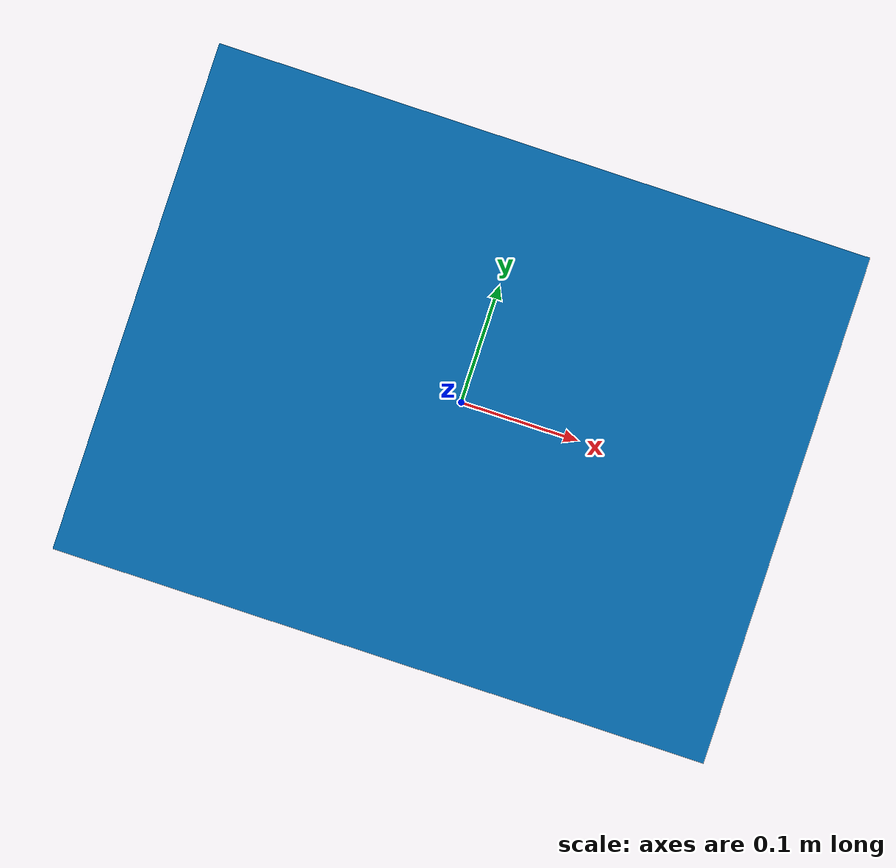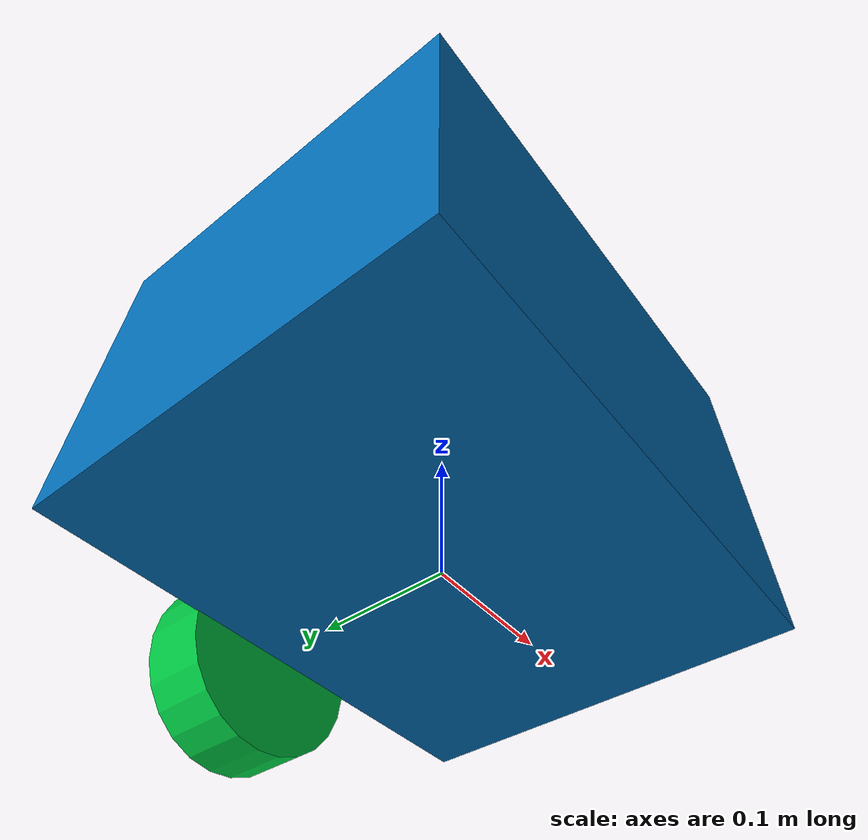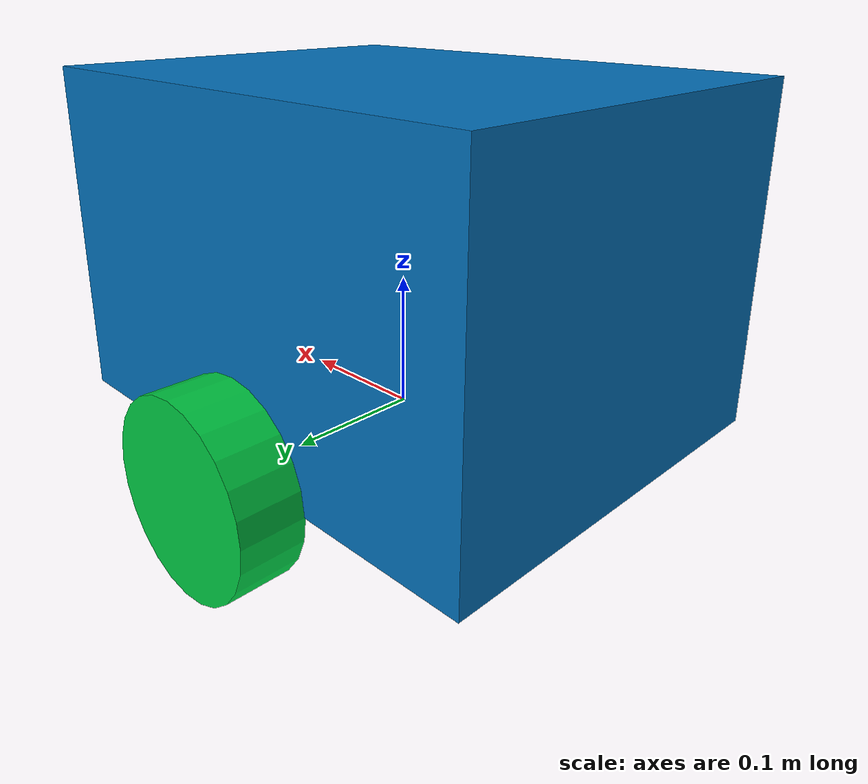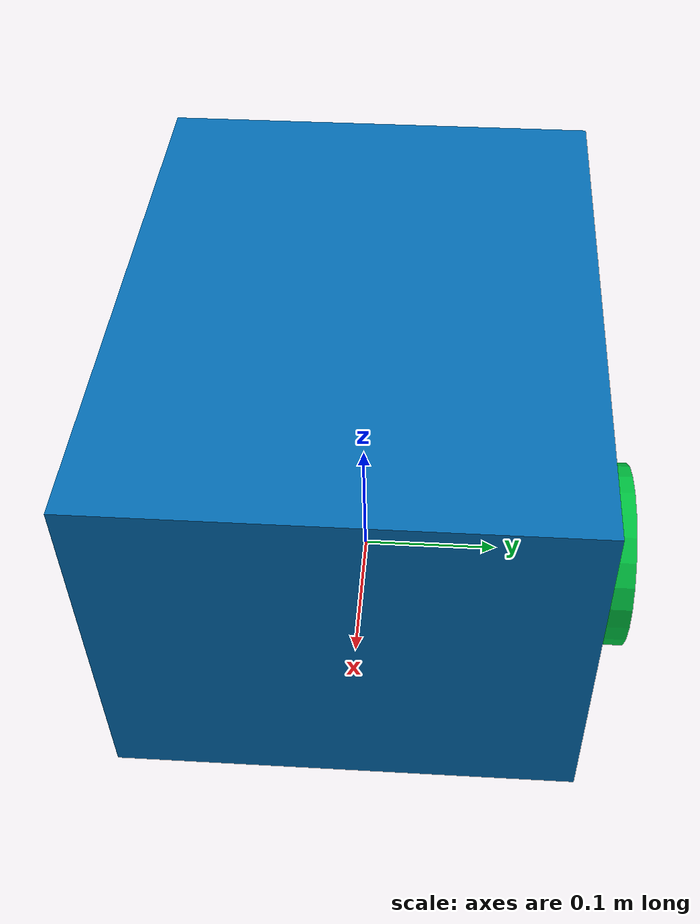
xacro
<?xml version="1.0"?>
<!-- Este archivo corresponde al primer diseño del robot solver
    para la simulacion y lanzamiento de pruebas de ejecucion,
    junto al funcionamiento del robot real.
-->
<robot xmlns:xacro="http://www.ros.org/wiki/xacro">
    <!-- Seccion para creacion de propiedades de links -->
    <xacro:property name="chassis_length" value="0.3920"/>
    <xacro:property name="chassis_height" value="0.3045"/>
    <xacro:property name="chassis_width" value="0.2500"/>
    <!-- Seccion de valores de medidas de ruedas -->
    <xacro:property name="wheel_radius" value="0.07"/>
    <xacro:property name="wheel_thickness" value="0.047"/>
    <xacro:property name="wheel_offset_x" value="0.226"/>
    <xacro:property name="wheel_offset_y" value="0.175"/>
    <xacro:property name="wheel_offset_z" value="0.01"/>

    <!-- Esta seccion corresponde al color y descripcion de materiales-->
    <material name = "blue">
        <color rgba = "${3/255} ${111/255} ${183/255} 1"/>
    </material>

    <material name="black">
        <color rgba="0 0 0 1"/>
    </material>

    <material name="red">
        <color rgba="${255/255} ${99/255} ${71/255} 1"/>
    </material>

    <material name="green">
        <color rgba="${0/255} ${198/255} ${66/255} 1"/>
    </material>
    <!-- Seccion de base link -->
    <link name="base_link"></link>

    <!-- Seccion de creacion de link de chasis -->
    <!-- Primero se crea la articulacion (joint) -->
    <joint name = "chassis_joint" type = "fixed">
        <parent link = "base_link"/>
        <child link = "chassis"/>
        <origin xyz = "${-chassis_length/2} 0 0"/>
    </joint>

    <link name="chassis">
        <visual>
            <origin xyz="${chassis_length/2} 0 ${chassis_width/2}"/>
            <geometry>
                <box size="${chassis_length} ${chassis_height} ${chassis_width}"/>
            </geometry>
            <material name="blue"/>
        </visual>
    </link>

    <!-- Seccion de diseño de ruedas, donde se tiene en cuenta la transmision entre las 2 -->
    <!-- Seccion de ruedas de la izquierda -->
    <joint name = "left_wheel_joint" type = "continuous">
        <parent link="base_link"/>
        <child link="left_wheel_front"/>
        <origin xyz="0 ${wheel_offset_y} 0" rpy="-${pi/2} 0 0" />
        <axis xyz="0 0 1"/>
    </joint>

    <link name="left_wheel_front">
        <visual>
            <geometry>
                <cylinder radius="${wheel_radius}" length="${wheel_thickness}"/>
            </geometry>
            <material name="green"/>
        </visual>
    </link>
</robot>
